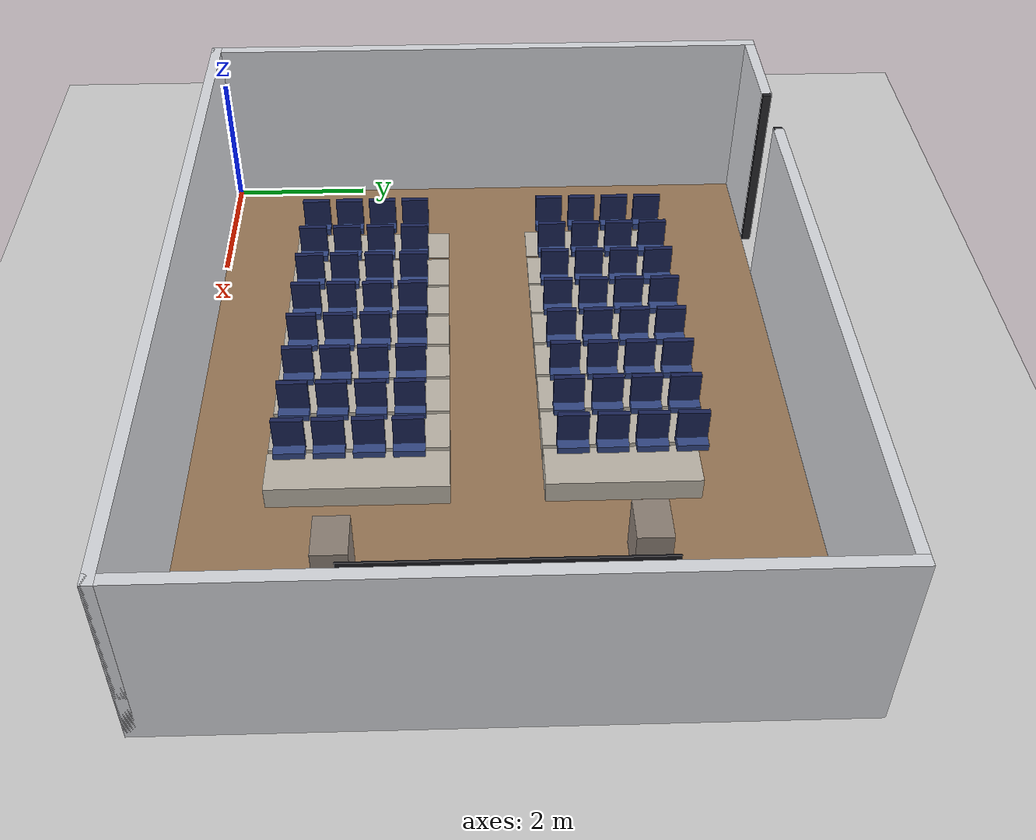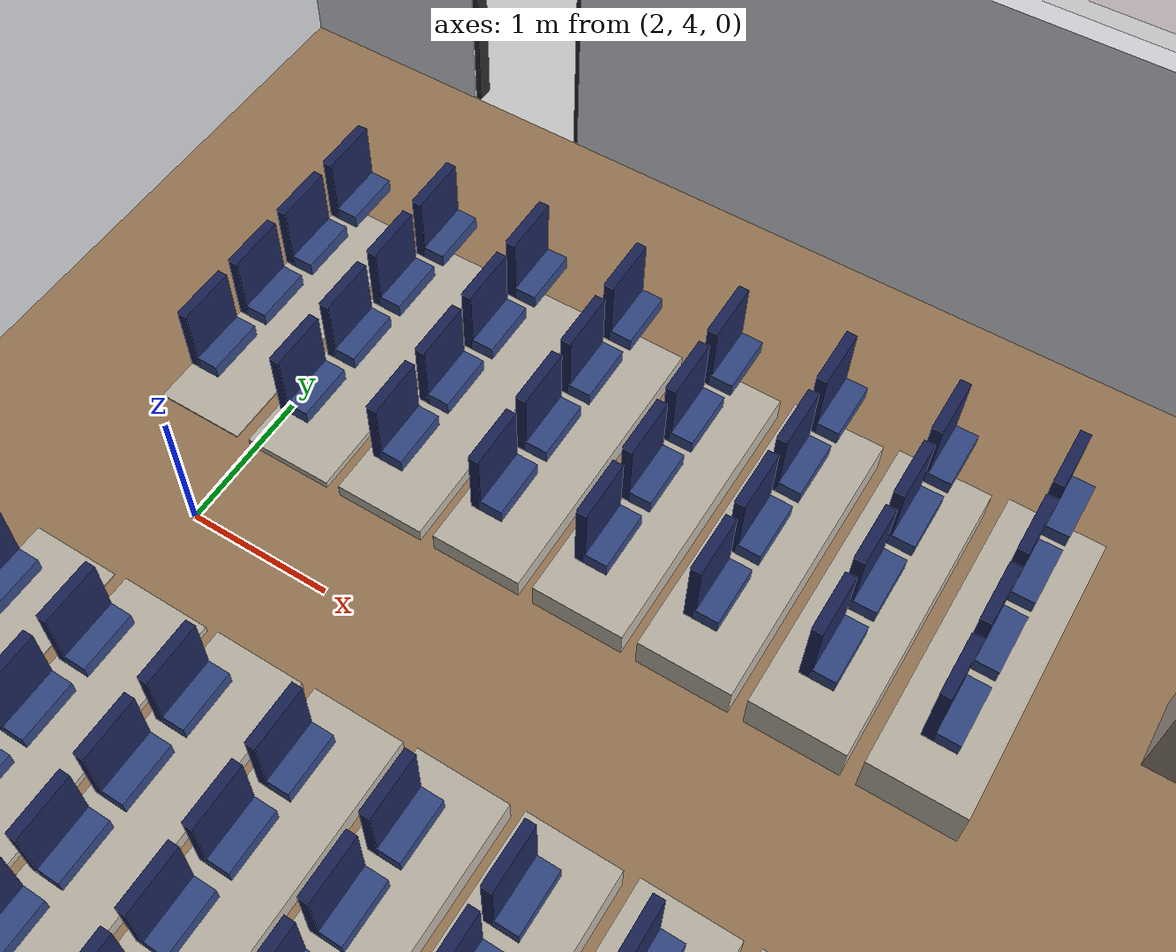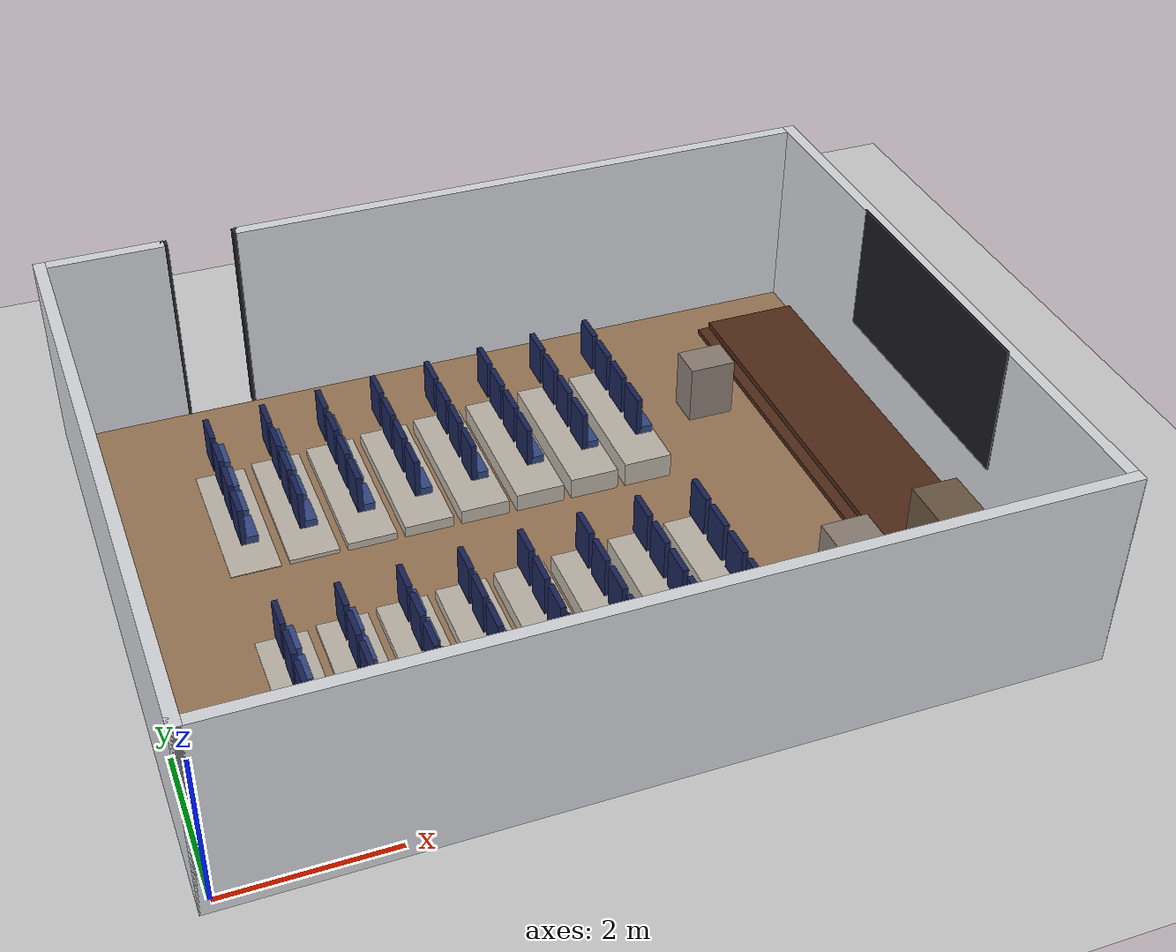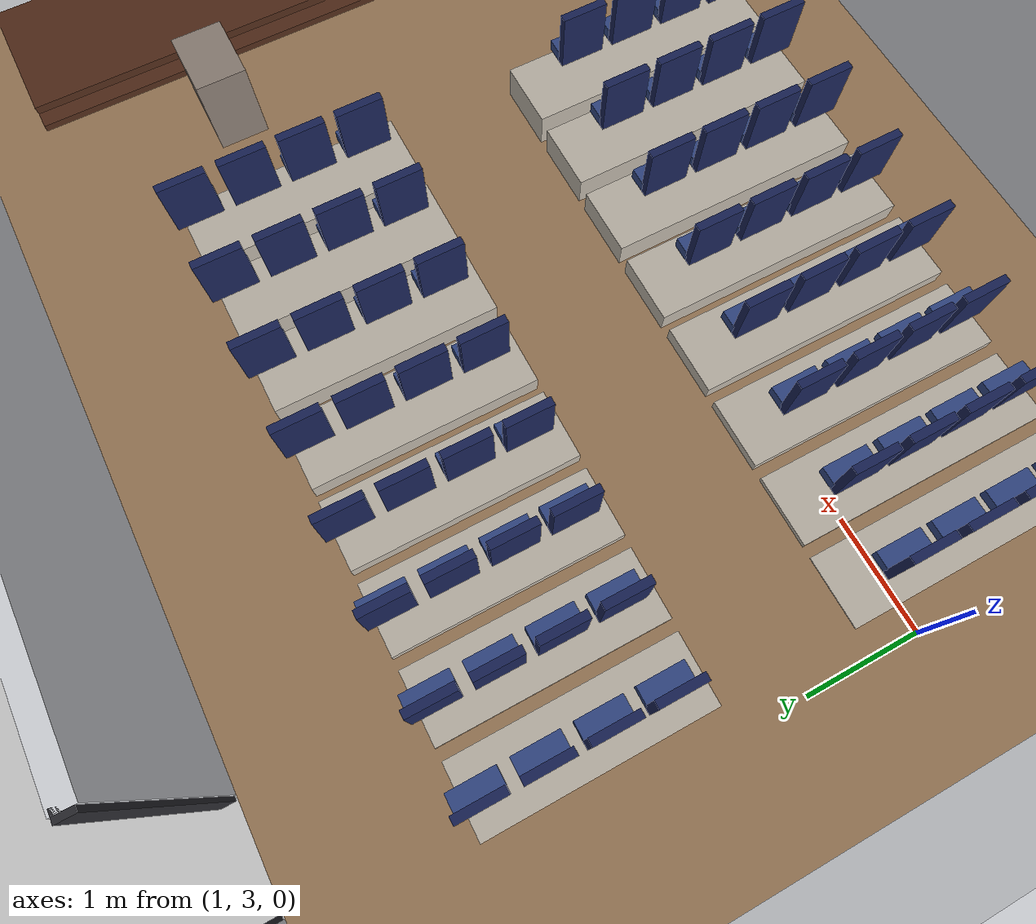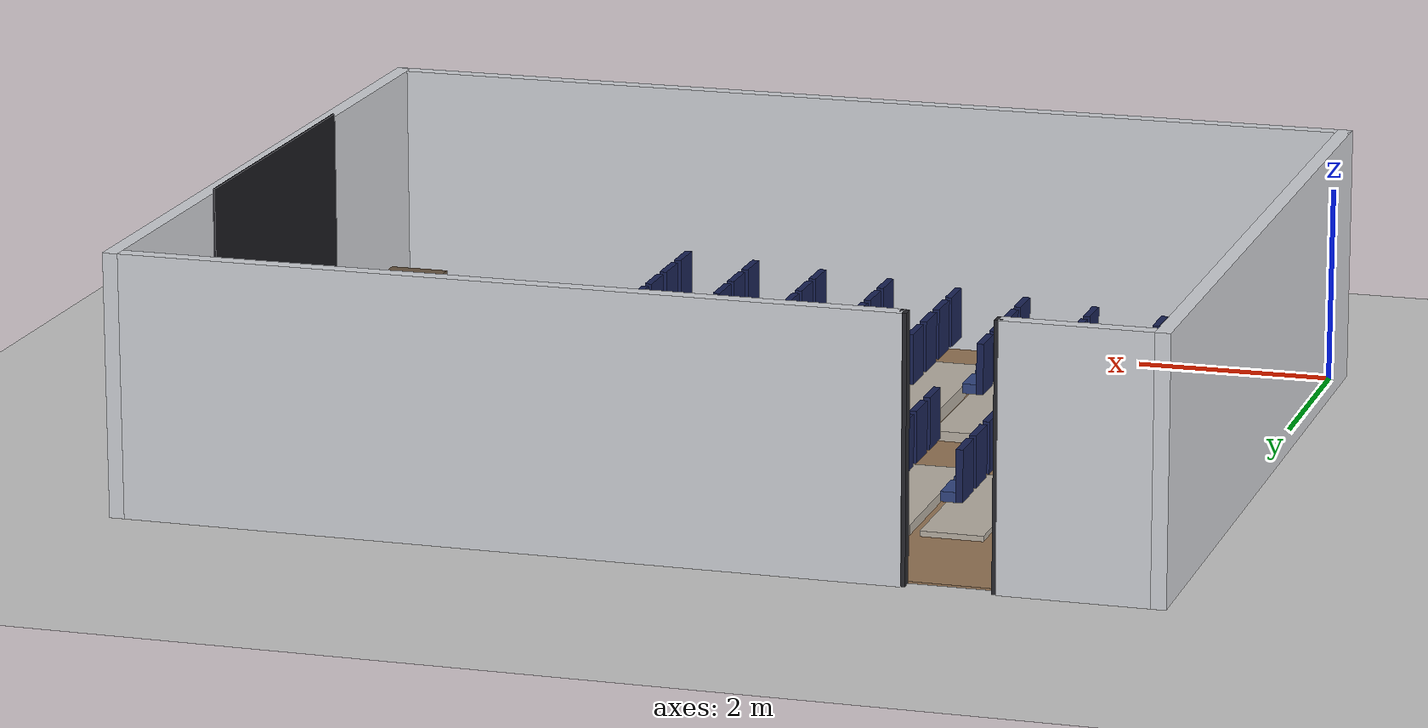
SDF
<sdf version="1.8">
 <world name="lecture_hall">
  <physics type="ode">
   <max_step_size>0.001</max_step_size>
   <real_time_factor>1</real_time_factor>
   <real_time_update_rate>1000</real_time_update_rate>
  </physics>
  <plugin filename="gz-sim-physics-system" name="gz::sim::systems::Physics"/>
  <plugin filename="gz-sim-user-commands-system" name="gz::sim::systems::UserCommands"/>
  <plugin filename="gz-sim-scene-broadcaster-system" name="gz::sim::systems::SceneBroadcaster"/>
  <plugin filename="gz-sim-sensors-system" name="gz::sim::systems::Sensors">
   <render_engine>ogre2</render_engine>
  </plugin>
  <plugin filename="gz-sim-imu-system" name="gz::sim::systems::Imu"/>
  <include><uri>https://fuel.gazebosim.org/1.0/OpenRobotics/models/Ground Plane</uri></include>
  <include><uri>https://fuel.gazebosim.org/1.0/OpenRobotics/models/Sun</uri></include>
  <model name="lecture_hall"><static>true</static><include><uri>model://lecture_hall</uri></include></model>
 </world>
</sdf>
